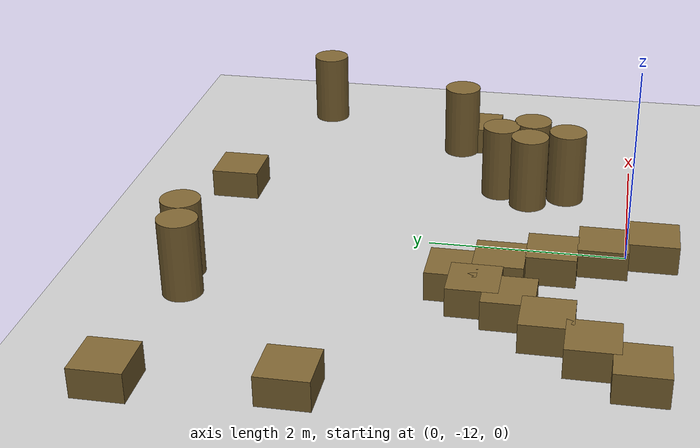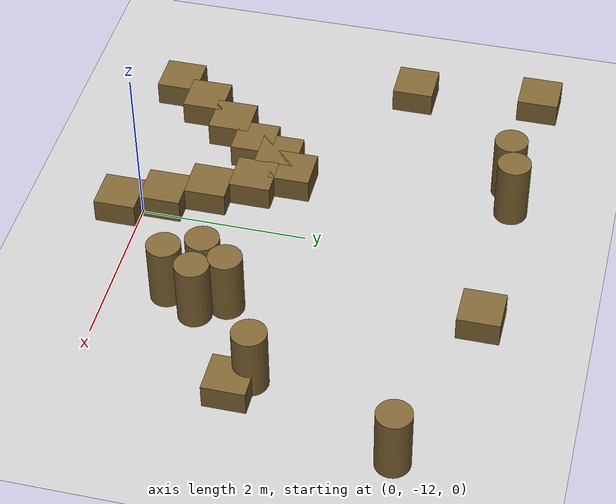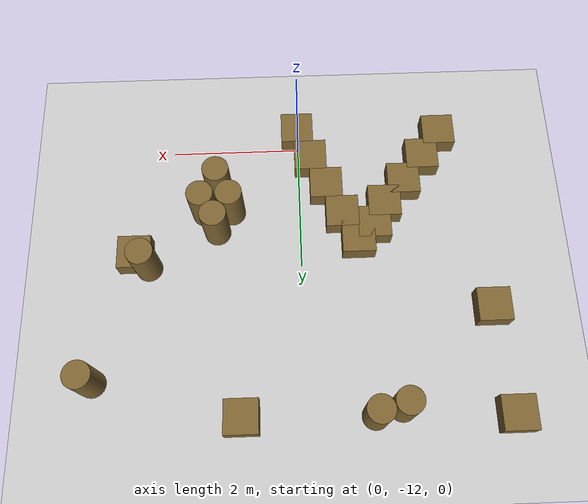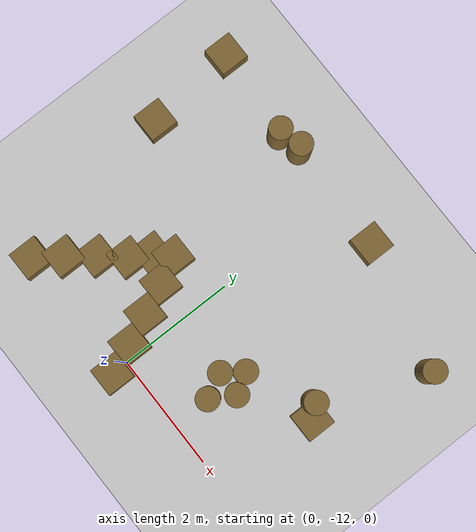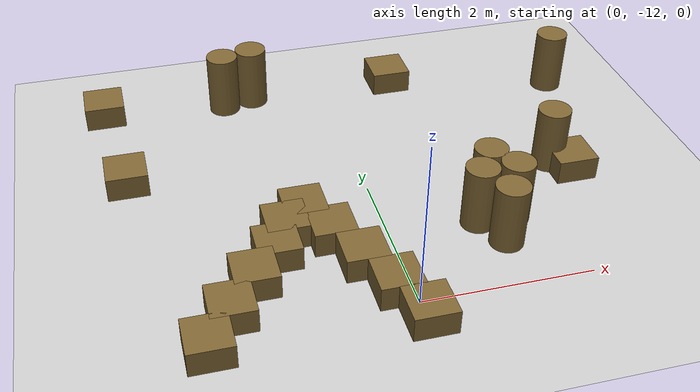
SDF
<sdf version="1.7">
 <world name="default">
  <model name="ground_plane">
   <static>1</static>
   <link name="link">
    <collision name="collision">
     <geometry><plane><normal>0 0 1</normal><size>100 100</size></plane></geometry>
     <surface><friction><ode><mu>100</mu><mu2>50</mu2></ode></friction></surface>
    </collision>
    <visual name="visual">
     <cast_shadows>0</cast_shadows>
     <geometry><plane><normal>0 0 1</normal><size>100 100</size></plane></geometry>
     <material>
      <script><uri>file://media/materials/scripts/gazebo.material</uri><name>Gazebo/Grey</name></script>
     </material>
    </visual>
   </link>
  </model>
  <model name="mini_box_clone_clone_3_clone_0_clone_0_clone">
   <link name="link">
    <inertial>
     <mass>1</mass>
     <inertia>
      <ixx>0.166667</ixx>
      <ixy>0</ixy>
      <ixz>0</ixz>
      <iyy>0.166667</iyy>
      <iyz>0</iyz>
      <izz>0.166667</izz>
     </inertia>
    </inertial>
    <visual name="visual">
     <geometry><box><size>0.5 0.5 0.3</size></box></geometry>
     <material>
      <script><name>Gazebo/Grey</name><uri>file://media/materials/scripts/gazebo.material</uri></script>
      <shader type="vertex"><normal_map>__default__</normal_map></shader>
      <ambient>0.5 0.4 0.2 1</ambient>
      <diffuse>0.7 0.7 0.7 1</diffuse>
      <specular>0.01 0.01 0.01 1</specular>
      <emissive>0 0 0 1</emissive>
     </material>
    </visual>
    <collision name="collision">
     <geometry><box><size>0.5 0.5 0.3</size></box></geometry>
     <surface>
      <friction>
       <ode><mu>1</mu><mu2>1</mu2><fdir1>0 0 0</fdir1><slip1>0</slip1><slip2>0</slip2></ode>
       <torsional>
        <coefficient>1</coefficient>
        <patch_radius>0</patch_radius>
        <surface_radius>0</surface_radius>
        <use_patch_radius>1</use_patch_radius>
        <ode><slip>0</slip></ode>
       </torsional>
      </friction>
      <bounce><restitution_coefficient>0</restitution_coefficient><threshold>1e+06</threshold></bounce>
      <contact>
       <collide_without_contact>0</collide_without_contact>
       <collide_without_contact_bitmask>1</collide_without_contact_bitmask>
       <collide_bitmask>1</collide_bitmask>
       <ode>
        <soft_cfm>0</soft_cfm>
        <soft_erp>0.2</soft_erp>
        <kp>1e+13</kp>
        <kd>1</kd>
        <max_vel>0.01</max_vel>
        <min_depth>0</min_depth>
       </ode>
       <bullet>
        <split_impulse>1</split_impulse>
        <split_impulse_penetration_threshold>-0.01</split_impulse_penetration_threshold>
        <soft_cfm>0</soft_cfm>
        <soft_erp>0.2</soft_erp>
        <kp>1e+13</kp>
        <kd>1</kd>
       </bullet>
      </contact>
     </surface>
    </collision>
   </link>
   <static>1</static>
   <pose>0.922017 -7.73696 0.15 0 -0 0</pose>
  </model>
  <model name="mini_box_clone_clone_3_clone_0_clone_0_clone_4">
   <link name="link">
    <inertial>
     <mass>1</mass>
     <inertia>
      <ixx>0.166667</ixx>
      <ixy>0</ixy>
      <ixz>0</ixz>
      <iyy>0.166667</iyy>
      <iyz>0</iyz>
      <izz>0.166667</izz>
     </inertia>
    </inertial>
    <visual name="visual">
     <geometry><box><size>0.5 0.5 0.3</size></box></geometry>
     <material>
      <script><name>Gazebo/Grey</name><uri>file://media/materials/scripts/gazebo.material</uri></script>
      <shader type="vertex"><normal_map>__default__</normal_map></shader>
      <ambient>0.5 0.4 0.2 1</ambient>
      <diffuse>0.7 0.7 0.7 1</diffuse>
      <specular>0.01 0.01 0.01 1</specular>
      <emissive>0 0 0 1</emissive>
     </material>
    </visual>
    <collision name="collision">
     <geometry><box><size>0.5 0.5 0.3</size></box></geometry>
     <surface>
      <friction>
       <ode><mu>1</mu><mu2>1</mu2><fdir1>0 0 0</fdir1><slip1>0</slip1><slip2>0</slip2></ode>
       <torsional>
        <coefficient>1</coefficient>
        <patch_radius>0</patch_radius>
        <surface_radius>0</surface_radius>
        <use_patch_radius>1</use_patch_radius>
        <ode><slip>0</slip></ode>
       </torsional>
      </friction>
      <bounce><restitution_coefficient>0</restitution_coefficient><threshold>1e+06</threshold></bounce>
      <contact>
       <collide_without_contact>0</collide_without_contact>
       <collide_without_contact_bitmask>1</collide_without_contact_bitmask>
       <collide_bitmask>1</collide_bitmask>
       <ode>
        <soft_cfm>0</soft_cfm>
        <soft_erp>0.2</soft_erp>
        <kp>1e+13</kp>
        <kd>1</kd>
        <max_vel>0.01</max_vel>
        <min_depth>0</min_depth>
       </ode>
       <bullet>
        <split_impulse>1</split_impulse>
        <split_impulse_penetration_threshold>-0.01</split_impulse_penetration_threshold>
        <soft_cfm>0</soft_cfm>
        <soft_erp>0.2</soft_erp>
        <kp>1e+13</kp>
        <kd>1</kd>
       </bullet>
      </contact>
     </surface>
    </collision>
   </link>
   <static>1</static>
   <pose>-0.876616 -10.3621 0.15 0 -0 0</pose>
  </model>
  <model name="mini_box_clone_clone_3_clone_0_clone_0_clone_5">
   <link name="link">
    <inertial>
     <mass>1</mass>
     <inertia>
      <ixx>0.166667</ixx>
      <ixy>0</ixy>
      <ixz>0</ixz>
      <iyy>0.166667</iyy>
      <iyz>0</iyz>
      <izz>0.166667</izz>
     </inertia>
    </inertial>
    <visual name="visual">
     <geometry><box><size>0.5 0.5 0.3</size></box></geometry>
     <material>
      <script><name>Gazebo/Grey</name><uri>file://media/materials/scripts/gazebo.material</uri></script>
      <shader type="vertex"><normal_map>__default__</normal_map></shader>
      <ambient>0.5 0.4 0.2 1</ambient>
      <diffuse>0.7 0.7 0.7 1</diffuse>
      <specular>0.01 0.01 0.01 1</specular>
      <emissive>0 0 0 1</emissive>
     </material>
    </visual>
    <collision name="collision">
     <geometry><box><size>0.5 0.5 0.3</size></box></geometry>
     <surface>
      <friction>
       <ode><mu>1</mu><mu2>1</mu2><fdir1>0 0 0</fdir1><slip1>0</slip1><slip2>0</slip2></ode>
       <torsional>
        <coefficient>1</coefficient>
        <patch_radius>0</patch_radius>
        <surface_radius>0</surface_radius>
        <use_patch_radius>1</use_patch_radius>
        <ode><slip>0</slip></ode>
       </torsional>
      </friction>
      <bounce><restitution_coefficient>0</restitution_coefficient><threshold>1e+06</threshold></bounce>
      <contact>
       <collide_without_contact>0</collide_without_contact>
       <collide_without_contact_bitmask>1</collide_without_contact_bitmask>
       <collide_bitmask>1</collide_bitmask>
       <ode>
        <soft_cfm>0</soft_cfm>
        <soft_erp>0.2</soft_erp>
        <kp>1e+13</kp>
        <kd>1</kd>
        <max_vel>0.01</max_vel>
        <min_depth>0</min_depth>
       </ode>
       <bullet>
        <split_impulse>1</split_impulse>
        <split_impulse_penetration_threshold>-0.01</split_impulse_penetration_threshold>
        <soft_cfm>0</soft_cfm>
        <soft_erp>0.2</soft_erp>
        <kp>1e+13</kp>
        <kd>1</kd>
       </bullet>
      </contact>
     </surface>
    </collision>
   </link>
   <static>1</static>
   <pose>-0.64727 -10.7882 0.15 0 -0 0</pose>
  </model>
  <model name="mini_box_clone_clone_3_clone_0_clone_0_clone_6">
   <link name="link">
    <inertial>
     <mass>1</mass>
     <inertia>
      <ixx>0.166667</ixx>
      <ixy>0</ixy>
      <ixz>0</ixz>
      <iyy>0.166667</iyy>
      <iyz>0</iyz>
      <izz>0.166667</izz>
     </inertia>
    </inertial>
    <visual name="visual">
     <geometry><box><size>0.5 0.5 0.3</size></box></geometry>
     <material>
      <script><name>Gazebo/Grey</name><uri>file://media/materials/scripts/gazebo.material</uri></script>
      <shader type="vertex"><normal_map>__default__</normal_map></shader>
      <ambient>0.5 0.4 0.2 1</ambient>
      <diffuse>0.7 0.7 0.7 1</diffuse>
      <specular>0.01 0.01 0.01 1</specular>
      <emissive>0 0 0 1</emissive>
     </material>
    </visual>
    <collision name="collision">
     <geometry><box><size>0.5 0.5 0.3</size></box></geometry>
     <surface>
      <friction>
       <ode><mu>1</mu><mu2>1</mu2><fdir1>0 0 0</fdir1><slip1>0</slip1><slip2>0</slip2></ode>
       <torsional>
        <coefficient>1</coefficient>
        <patch_radius>0</patch_radius>
        <surface_radius>0</surface_radius>
        <use_patch_radius>1</use_patch_radius>
        <ode><slip>0</slip></ode>
       </torsional>
      </friction>
      <bounce><restitution_coefficient>0</restitution_coefficient><threshold>1e+06</threshold></bounce>
      <contact>
       <collide_without_contact>0</collide_without_contact>
       <collide_without_contact_bitmask>1</collide_without_contact_bitmask>
       <collide_bitmask>1</collide_bitmask>
       <ode>
        <soft_cfm>0</soft_cfm>
        <soft_erp>0.2</soft_erp>
        <kp>1e+13</kp>
        <kd>1</kd>
        <max_vel>0.01</max_vel>
        <min_depth>0</min_depth>
       </ode>
       <bullet>
        <split_impulse>1</split_impulse>
        <split_impulse_penetration_threshold>-0.01</split_impulse_penetration_threshold>
        <soft_cfm>0</soft_cfm>
        <soft_erp>0.2</soft_erp>
        <kp>1e+13</kp>
        <kd>1</kd>
       </bullet>
      </contact>
     </surface>
    </collision>
   </link>
   <static>1</static>
   <pose>-0.417818 -11.2795 0.15 0 -0 0</pose>
  </model>
  <model name="mini_box_clone_clone_3_clone_0_clone_0_clone_7">
   <link name="link">
    <inertial>
     <mass>1</mass>
     <inertia>
      <ixx>0.166667</ixx>
      <ixy>0</ixy>
      <ixz>0</ixz>
      <iyy>0.166667</iyy>
      <iyz>0</iyz>
      <izz>0.166667</izz>
     </inertia>
    </inertial>
    <visual name="visual">
     <geometry><box><size>0.5 0.5 0.3</size></box></geometry>
     <material>
      <script><name>Gazebo/Grey</name><uri>file://media/materials/scripts/gazebo.material</uri></script>
      <shader type="vertex"><normal_map>__default__</normal_map></shader>
      <ambient>0.5 0.4 0.2 1</ambient>
      <diffuse>0.7 0.7 0.7 1</diffuse>
      <specular>0.01 0.01 0.01 1</specular>
      <emissive>0 0 0 1</emissive>
     </material>
    </visual>
    <collision name="collision">
     <geometry><box><size>0.5 0.5 0.3</size></box></geometry>
     <surface>
      <friction>
       <ode><mu>1</mu><mu2>1</mu2><fdir1>0 0 0</fdir1><slip1>0</slip1><slip2>0</slip2></ode>
       <torsional>
        <coefficient>1</coefficient>
        <patch_radius>0</patch_radius>
        <surface_radius>0</surface_radius>
        <use_patch_radius>1</use_patch_radius>
        <ode><slip>0</slip></ode>
       </torsional>
      </friction>
      <bounce><restitution_coefficient>0</restitution_coefficient><threshold>1e+06</threshold></bounce>
      <contact>
       <collide_without_contact>0</collide_without_contact>
       <collide_without_contact_bitmask>1</collide_without_contact_bitmask>
       <collide_bitmask>1</collide_bitmask>
       <ode>
        <soft_cfm>0</soft_cfm>
        <soft_erp>0.2</soft_erp>
        <kp>1e+13</kp>
        <kd>1</kd>
        <max_vel>0.01</max_vel>
        <min_depth>0</min_depth>
       </ode>
       <bullet>
        <split_impulse>1</split_impulse>
        <split_impulse_penetration_threshold>-0.01</split_impulse_penetration_threshold>
        <soft_cfm>0</soft_cfm>
        <soft_erp>0.2</soft_erp>
        <kp>1e+13</kp>
        <kd>1</kd>
       </bullet>
      </contact>
     </surface>
    </collision>
   </link>
   <static>1</static>
   <pose>-0.188472 -11.771 0.15 0 -0 0</pose>
  </model>
  <model name="mini_box_clone_clone_3_clone_0_clone_0_clone_8">
   <link name="link">
    <inertial>
     <mass>1</mass>
     <inertia>
      <ixx>0.166667</ixx>
      <ixy>0</ixy>
      <ixz>0</ixz>
      <iyy>0.166667</iyy>
      <iyz>0</iyz>
      <izz>0.166667</izz>
     </inertia>
    </inertial>
    <visual name="visual">
     <geometry><box><size>0.5 0.5 0.3</size></box></geometry>
     <material>
      <script><name>Gazebo/Grey</name><uri>file://media/materials/scripts/gazebo.material</uri></script>
      <shader type="vertex"><normal_map>__default__</normal_map></shader>
      <ambient>0.5 0.4 0.2 1</ambient>
      <diffuse>0.7 0.7 0.7 1</diffuse>
      <specular>0.01 0.01 0.01 1</specular>
      <emissive>0 0 0 1</emissive>
     </material>
    </visual>
    <collision name="collision">
     <geometry><box><size>0.5 0.5 0.3</size></box></geometry>
     <surface>
      <friction>
       <ode><mu>1</mu><mu2>1</mu2><fdir1>0 0 0</fdir1><slip1>0</slip1><slip2>0</slip2></ode>
       <torsional>
        <coefficient>1</coefficient>
        <patch_radius>0</patch_radius>
        <surface_radius>0</surface_radius>
        <use_patch_radius>1</use_patch_radius>
        <ode><slip>0</slip></ode>
       </torsional>
      </friction>
      <bounce><restitution_coefficient>0</restitution_coefficient><threshold>1e+06</threshold></bounce>
      <contact>
       <collide_without_contact>0</collide_without_contact>
       <collide_without_contact_bitmask>1</collide_without_contact_bitmask>
       <collide_bitmask>1</collide_bitmask>
       <ode>
        <soft_cfm>0</soft_cfm>
        <soft_erp>0.2</soft_erp>
        <kp>1e+13</kp>
        <kd>1</kd>
        <max_vel>0.01</max_vel>
        <min_depth>0</min_depth>
       </ode>
       <bullet>
        <split_impulse>1</split_impulse>
        <split_impulse_penetration_threshold>-0.01</split_impulse_penetration_threshold>
        <soft_cfm>0</soft_cfm>
        <soft_erp>0.2</soft_erp>
        <kp>1e+13</kp>
        <kd>1</kd>
       </bullet>
      </contact>
     </surface>
    </collision>
   </link>
   <static>1</static>
   <pose>0.00799 -12.2624 0.15 0 -0 0</pose>
  </model>
  <model name="mini_cylinder_0_clone_0_clone_0_clone">
   <link name="link">
    <inertial>
     <mass>1</mass>
     <inertia><ixx>0.145833</ixx><ixy>0</ixy><ixz>0</ixz><iyy>0.145833</iyy><iyz>0</iyz><izz>0.125</izz></inertia>
    </inertial>
    <visual name="visual">
     <geometry><cylinder><radius>0.2</radius><length>0.8</length></cylinder></geometry>
     <material>
      <script><name>Gazebo/Grey</name><uri>file://media/materials/scripts/gazebo.material</uri></script>
      <shader type="vertex"><normal_map>__default__</normal_map></shader>
      <ambient>0.5 0.4 0.2 1</ambient>
      <diffuse>0.7 0.7 0.7 1</diffuse>
      <specular>0.01 0.01 0.01 1</specular>
      <emissive>0 0 0 1</emissive>
     </material>
    </visual>
    <collision name="collision">
     <geometry><cylinder><radius>0.2</radius><length>0.8</length></cylinder></geometry>
     <surface>
      <friction>
       <ode><mu>1</mu><mu2>1</mu2><fdir1>0 0 0</fdir1><slip1>0</slip1><slip2>0</slip2></ode>
       <torsional>
        <coefficient>1</coefficient>
        <patch_radius>0</patch_radius>
        <surface_radius>0</surface_radius>
        <use_patch_radius>1</use_patch_radius>
        <ode><slip>0</slip></ode>
       </torsional>
      </friction>
      <bounce><restitution_coefficient>0</restitution_coefficient><threshold>1e+06</threshold></bounce>
      <contact>
       <collide_without_contact>0</collide_without_contact>
       <collide_without_contact_bitmask>1</collide_without_contact_bitmask>
       <collide_bitmask>1</collide_bitmask>
       <ode>
        <soft_cfm>0</soft_cfm>
        <soft_erp>0.2</soft_erp>
        <kp>1e+13</kp>
        <kd>1</kd>
        <max_vel>0.01</max_vel>
        <min_depth>0</min_depth>
       </ode>
       <bullet>
        <split_impulse>1</split_impulse>
        <split_impulse_penetration_threshold>-0.01</split_impulse_penetration_threshold>
        <soft_cfm>0</soft_cfm>
        <soft_erp>0.2</soft_erp>
        <kp>1e+13</kp>
        <kd>1</kd>
       </bullet>
      </contact>
     </surface>
    </collision>
   </link>
   <static>1</static>
   <pose>1.28573 -10.5914 0.4 0 -0 0</pose>
  </model>
  <model name="mini_cylinder_0_clone_0_clone_0_clone_0">
   <link name="link">
    <inertial>
     <mass>1</mass>
     <inertia><ixx>0.145833</ixx><ixy>0</ixy><ixz>0</ixz><iyy>0.145833</iyy><iyz>0</iyz><izz>0.125</izz></inertia>
    </inertial>
    <visual name="visual">
     <geometry><cylinder><radius>0.2</radius><length>0.8</length></cylinder></geometry>
     <material>
      <script><name>Gazebo/Grey</name><uri>file://media/materials/scripts/gazebo.material</uri></script>
      <shader type="vertex"><normal_map>__default__</normal_map></shader>
      <ambient>0.5 0.4 0.2 1</ambient>
      <diffuse>0.7 0.7 0.7 1</diffuse>
      <specular>0.01 0.01 0.01 1</specular>
      <emissive>0 0 0 1</emissive>
     </material>
    </visual>
    <collision name="collision">
     <geometry><cylinder><radius>0.2</radius><length>0.8</length></cylinder></geometry>
     <surface>
      <friction>
       <ode><mu>1</mu><mu2>1</mu2><fdir1>0 0 0</fdir1><slip1>0</slip1><slip2>0</slip2></ode>
       <torsional>
        <coefficient>1</coefficient>
        <patch_radius>0</patch_radius>
        <surface_radius>0</surface_radius>
        <use_patch_radius>1</use_patch_radius>
        <ode><slip>0</slip></ode>
       </torsional>
      </friction>
      <bounce><restitution_coefficient>0</restitution_coefficient><threshold>1e+06</threshold></bounce>
      <contact>
       <collide_without_contact>0</collide_without_contact>
       <collide_without_contact_bitmask>1</collide_without_contact_bitmask>
       <collide_bitmask>1</collide_bitmask>
       <ode>
        <soft_cfm>0</soft_cfm>
        <soft_erp>0.2</soft_erp>
        <kp>1e+13</kp>
        <kd>1</kd>
        <max_vel>0.01</max_vel>
        <min_depth>0</min_depth>
       </ode>
       <bullet>
        <split_impulse>1</split_impulse>
        <split_impulse_penetration_threshold>-0.01</split_impulse_penetration_threshold>
        <soft_cfm>0</soft_cfm>
        <soft_erp>0.2</soft_erp>
        <kp>1e+13</kp>
        <kd>1</kd>
       </bullet>
      </contact>
     </surface>
    </collision>
   </link>
   <static>1</static>
   <pose>1.4823 -10.9191 0.4 0 -0 0</pose>
  </model>
  <model name="mini_cylinder_0_clone_0_clone_0_clone_1">
   <link name="link">
    <inertial>
     <mass>1</mass>
     <inertia><ixx>0.145833</ixx><ixy>0</ixy><ixz>0</ixz><iyy>0.145833</iyy><iyz>0</iyz><izz>0.125</izz></inertia>
    </inertial>
    <visual name="visual">
     <geometry><cylinder><radius>0.2</radius><length>0.8</length></cylinder></geometry>
     <material>
      <script><name>Gazebo/Grey</name><uri>file://media/materials/scripts/gazebo.material</uri></script>
      <shader type="vertex"><normal_map>__default__</normal_map></shader>
      <ambient>0.5 0.4 0.2 1</ambient>
      <diffuse>0.7 0.7 0.7 1</diffuse>
      <specular>0.01 0.01 0.01 1</specular>
      <emissive>0 0 0 1</emissive>
     </material>
    </visual>
    <collision name="collision">
     <geometry><cylinder><radius>0.2</radius><length>0.8</length></cylinder></geometry>
     <surface>
      <friction>
       <ode><mu>1</mu><mu2>1</mu2><fdir1>0 0 0</fdir1><slip1>0</slip1><slip2>0</slip2></ode>
       <torsional>
        <coefficient>1</coefficient>
        <patch_radius>0</patch_radius>
        <surface_radius>0</surface_radius>
        <use_patch_radius>1</use_patch_radius>
        <ode><slip>0</slip></ode>
       </torsional>
      </friction>
      <bounce><restitution_coefficient>0</restitution_coefficient><threshold>1e+06</threshold></bounce>
      <contact>
       <collide_without_contact>0</collide_without_contact>
       <collide_without_contact_bitmask>1</collide_without_contact_bitmask>
       <collide_bitmask>1</collide_bitmask>
       <ode>
        <soft_cfm>0</soft_cfm>
        <soft_erp>0.2</soft_erp>
        <kp>1e+13</kp>
        <kd>1</kd>
        <max_vel>0.01</max_vel>
        <min_depth>0</min_depth>
       </ode>
       <bullet>
        <split_impulse>1</split_impulse>
        <split_impulse_penetration_threshold>-0.01</split_impulse_penetration_threshold>
        <soft_cfm>0</soft_cfm>
        <soft_erp>0.2</soft_erp>
        <kp>1e+13</kp>
        <kd>1</kd>
       </bullet>
      </contact>
     </surface>
    </collision>
   </link>
   <static>1</static>
   <pose>1.05628 -10.9191 0.4 0 -0 0</pose>
  </model>
  <model name="mini_cylinder_0_clone_0_clone_0_clone_2">
   <link name="link">
    <inertial>
     <mass>1</mass>
     <inertia><ixx>0.145833</ixx><ixy>0</ixy><ixz>0</ixz><iyy>0.145833</iyy><iyz>0</iyz><izz>0.125</izz></inertia>
    </inertial>
    <visual name="visual">
     <geometry><cylinder><radius>0.2</radius><length>0.8</length></cylinder></geometry>
     <material>
      <script><name>Gazebo/Grey</name><uri>file://media/materials/scripts/gazebo.material</uri></script>
      <shader type="vertex"><normal_map>__default__</normal_map></shader>
      <ambient>0.5 0.4 0.2 1</ambient>
      <diffuse>0.7 0.7 0.7 1</diffuse>
      <specular>0.01 0.01 0.01 1</specular>
      <emissive>0 0 0 1</emissive>
     </material>
    </visual>
    <collision name="collision">
     <geometry><cylinder><radius>0.2</radius><length>0.8</length></cylinder></geometry>
     <surface>
      <friction>
       <ode><mu>1</mu><mu2>1</mu2><fdir1>0 0 0</fdir1><slip1>0</slip1><slip2>0</slip2></ode>
       <torsional>
        <coefficient>1</coefficient>
        <patch_radius>0</patch_radius>
        <surface_radius>0</surface_radius>
        <use_patch_radius>1</use_patch_radius>
        <ode><slip>0</slip></ode>
       </torsional>
      </friction>
      <bounce><restitution_coefficient>0</restitution_coefficient><threshold>1e+06</threshold></bounce>
      <contact>
       <collide_without_contact>0</collide_without_contact>
       <collide_without_contact_bitmask>1</collide_without_contact_bitmask>
       <collide_bitmask>1</collide_bitmask>
       <ode>
        <soft_cfm>0</soft_cfm>
        <soft_erp>0.2</soft_erp>
        <kp>1e+13</kp>
        <kd>1</kd>
        <max_vel>0.01</max_vel>
        <min_depth>0</min_depth>
       </ode>
       <bullet>
        <split_impulse>1</split_impulse>
        <split_impulse_penetration_threshold>-0.01</split_impulse_penetration_threshold>
        <soft_cfm>0</soft_cfm>
        <soft_erp>0.2</soft_erp>
        <kp>1e+13</kp>
        <kd>1</kd>
       </bullet>
      </contact>
     </surface>
    </collision>
   </link>
   <static>1</static>
   <pose>1.25295 -11.3121 0.4 0 -0 0</pose>
  </model>
  <model name="mini_cylinder_0_clone_0_clone_0_clone_3">
   <link name="link">
    <inertial>
     <mass>1</mass>
     <inertia><ixx>0.145833</ixx><ixy>0</ixy><ixz>0</ixz><iyy>0.145833</iyy><iyz>0</iyz><izz>0.125</izz></inertia>
    </inertial>
    <visual name="visual">
     <geometry><cylinder><radius>0.2</radius><length>0.8</length></cylinder></geometry>
     <material>
      <script><name>Gazebo/Grey</name><uri>file://media/materials/scripts/gazebo.material</uri></script>
      <shader type="vertex"><normal_map>__default__</normal_map></shader>
      <ambient>0.5 0.4 0.2 1</ambient>
      <diffuse>0.7 0.7 0.7 1</diffuse>
      <specular>0.01 0.01 0.01 1</specular>
      <emissive>0 0 0 1</emissive>
     </material>
    </visual>
    <collision name="collision">
     <geometry><cylinder><radius>0.2</radius><length>0.8</length></cylinder></geometry>
     <surface>
      <friction>
       <ode><mu>1</mu><mu2>1</mu2><fdir1>0 0 0</fdir1><slip1>0</slip1><slip2>0</slip2></ode>
       <torsional>
        <coefficient>1</coefficient>
        <patch_radius>0</patch_radius>
        <surface_radius>0</surface_radius>
        <use_patch_radius>1</use_patch_radius>
        <ode><slip>0</slip></ode>
       </torsional>
      </friction>
      <bounce><restitution_coefficient>0</restitution_coefficient><threshold>1e+06</threshold></bounce>
      <contact>
       <collide_without_contact>0</collide_without_contact>
       <collide_without_contact_bitmask>1</collide_without_contact_bitmask>
       <collide_bitmask>1</collide_bitmask>
       <ode>
        <soft_cfm>0</soft_cfm>
        <soft_erp>0.2</soft_erp>
        <kp>1e+13</kp>
        <kd>1</kd>
        <max_vel>0.01</max_vel>
        <min_depth>0</min_depth>
       </ode>
       <bullet>
        <split_impulse>1</split_impulse>
        <split_impulse_penetration_threshold>-0.01</split_impulse_penetration_threshold>
        <soft_cfm>0</soft_cfm>
        <soft_erp>0.2</soft_erp>
        <kp>1e+13</kp>
        <kd>1</kd>
       </bullet>
      </contact>
     </surface>
    </collision>
   </link>
   <static>1</static>
   <pose>-0.974742 -7.7083 0.4 0 -0 0</pose>
  </model>
  <model name="mini_cylinder_0_clone_0_clone_0_clone_5">
   <link name="link">
    <inertial>
     <mass>1</mass>
     <inertia><ixx>0.145833</ixx><ixy>0</ixy><ixz>0</ixz><iyy>0.145833</iyy><iyz>0</iyz><izz>0.125</izz></inertia>
    </inertial>
    <visual name="visual">
     <geometry><cylinder><radius>0.2</radius><length>0.8</length></cylinder></geometry>
     <material>
      <script><name>Gazebo/Grey</name><uri>file://media/materials/scripts/gazebo.material</uri></script>
      <shader type="vertex"><normal_map>__default__</normal_map></shader>
      <ambient>0.5 0.4 0.2 1</ambient>
      <diffuse>0.7 0.7 0.7 1</diffuse>
      <specular>0.01 0.01 0.01 1</specular>
      <emissive>0 0 0 1</emissive>
     </material>
    </visual>
    <collision name="collision">
     <geometry><cylinder><radius>0.2</radius><length>0.8</length></cylinder></geometry>
     <surface>
      <friction>
       <ode><mu>1</mu><mu2>1</mu2><fdir1>0 0 0</fdir1><slip1>0</slip1><slip2>0</slip2></ode>
       <torsional>
        <coefficient>1</coefficient>
        <patch_radius>0</patch_radius>
        <surface_radius>0</surface_radius>
        <use_patch_radius>1</use_patch_radius>
        <ode><slip>0</slip></ode>
       </torsional>
      </friction>
      <bounce><restitution_coefficient>0</restitution_coefficient><threshold>1e+06</threshold></bounce>
      <contact>
       <collide_without_contact>0</collide_without_contact>
       <collide_without_contact_bitmask>1</collide_without_contact_bitmask>
       <collide_bitmask>1</collide_bitmask>
       <ode>
        <soft_cfm>0</soft_cfm>
        <soft_erp>0.2</soft_erp>
        <kp>1e+13</kp>
        <kd>1</kd>
        <max_vel>0.01</max_vel>
        <min_depth>0</min_depth>
       </ode>
       <bullet>
        <split_impulse>1</split_impulse>
        <split_impulse_penetration_threshold>-0.01</split_impulse_penetration_threshold>
        <soft_cfm>0</soft_cfm>
        <soft_erp>0.2</soft_erp>
        <kp>1e+13</kp>
        <kd>1</kd>
       </bullet>
      </contact>
     </surface>
    </collision>
   </link>
   <static>1</static>
   <pose>-1.36798 -7.80664 0.4 0 -0 0</pose>
  </model>
  <model name="mini_cylinder_0_clone_0_clone_0_clone_9">
   <link name="link">
    <inertial>
     <mass>1</mass>
     <inertia><ixx>0.145833</ixx><ixy>0</ixy><ixz>0</ixz><iyy>0.145833</iyy><iyz>0</iyz><izz>0.125</izz></inertia>
    </inertial>
    <visual name="visual">
     <geometry><cylinder><radius>0.2</radius><length>0.8</length></cylinder></geometry>
     <material>
      <script><name>Gazebo/Grey</name><uri>file://media/materials/scripts/gazebo.material</uri></script>
      <shader type="vertex"><normal_map>__default__</normal_map></shader>
      <ambient>0.5 0.4 0.2 1</ambient>
      <diffuse>0.7 0.7 0.7 1</diffuse>
      <specular>0.01 0.01 0.01 1</specular>
      <emissive>0 0 0 1</emissive>
     </material>
    </visual>
    <collision name="collision">
     <geometry><cylinder><radius>0.2</radius><length>0.8</length></cylinder></geometry>
     <surface>
      <friction>
       <ode><mu>1</mu><mu2>1</mu2><fdir1>0 0 0</fdir1><slip1>0</slip1><slip2>0</slip2></ode>
       <torsional>
        <coefficient>1</coefficient>
        <patch_radius>0</patch_radius>
        <surface_radius>0</surface_radius>
        <use_patch_radius>1</use_patch_radius>
        <ode><slip>0</slip></ode>
       </torsional>
      </friction>
      <bounce><restitution_coefficient>0</restitution_coefficient><threshold>1e+06</threshold></bounce>
      <contact>
       <collide_without_contact>0</collide_without_contact>
       <collide_without_contact_bitmask>1</collide_without_contact_bitmask>
       <collide_bitmask>1</collide_bitmask>
       <ode>
        <soft_cfm>0</soft_cfm>
        <soft_erp>0.2</soft_erp>
        <kp>1e+13</kp>
        <kd>1</kd>
        <max_vel>0.01</max_vel>
        <min_depth>0</min_depth>
       </ode>
       <bullet>
        <split_impulse>1</split_impulse>
        <split_impulse_penetration_threshold>-0.01</split_impulse_penetration_threshold>
        <soft_cfm>0</soft_cfm>
        <soft_erp>0.2</soft_erp>
        <kp>1e+13</kp>
        <kd>1</kd>
       </bullet>
      </contact>
     </surface>
    </collision>
   </link>
   <static>1</static>
   <pose>2.32667 -10.0345 0.4 0 -0 0</pose>
  </model>
  <model name="mini_cylinder_0_clone_0_clone_0_clone_10">
   <link name="link">
    <inertial>
     <mass>1</mass>
     <inertia><ixx>0.145833</ixx><ixy>0</ixy><ixz>0</ixz><iyy>0.145833</iyy><iyz>0</iyz><izz>0.125</izz></inertia>
    </inertial>
    <visual name="visual">
     <geometry><cylinder><radius>0.2</radius><length>0.8</length></cylinder></geometry>
     <material>
      <script><name>Gazebo/Grey</name><uri>file://media/materials/scripts/gazebo.material</uri></script>
      <shader type="vertex"><normal_map>__default__</normal_map></shader>
      <ambient>0.5 0.4 0.2 1</ambient>
      <diffuse>0.7 0.7 0.7 1</diffuse>
      <specular>0.01 0.01 0.01 1</specular>
      <emissive>0 0 0 1</emissive>
     </material>
    </visual>
    <collision name="collision">
     <geometry><cylinder><radius>0.2</radius><length>0.8</length></cylinder></geometry>
     <surface>
      <friction>
       <ode><mu>1</mu><mu2>1</mu2><fdir1>0 0 0</fdir1><slip1>0</slip1><slip2>0</slip2></ode>
       <torsional>
        <coefficient>1</coefficient>
        <patch_radius>0</patch_radius>
        <surface_radius>0</surface_radius>
        <use_patch_radius>1</use_patch_radius>
        <ode><slip>0</slip></ode>
       </torsional>
      </friction>
      <bounce><restitution_coefficient>0</restitution_coefficient><threshold>1e+06</threshold></bounce>
      <contact>
       <collide_without_contact>0</collide_without_contact>
       <collide_without_contact_bitmask>1</collide_without_contact_bitmask>
       <collide_bitmask>1</collide_bitmask>
       <ode>
        <soft_cfm>0</soft_cfm>
        <soft_erp>0.2</soft_erp>
        <kp>1e+13</kp>
        <kd>1</kd>
        <max_vel>0.01</max_vel>
        <min_depth>0</min_depth>
       </ode>
       <bullet>
        <split_impulse>1</split_impulse>
        <split_impulse_penetration_threshold>-0.01</split_impulse_penetration_threshold>
        <soft_cfm>0</soft_cfm>
        <soft_erp>0.2</soft_erp>
        <kp>1e+13</kp>
        <kd>1</kd>
       </bullet>
      </contact>
     </surface>
    </collision>
   </link>
   <static>1</static>
   <pose>3.08026 -8.2979 0.4 0 -0 0</pose>
  </model>
  <model name="mini_box_clone_clone_0_clone_28">
   <link name="link">
    <inertial>
     <mass>1</mass>
     <inertia>
      <ixx>0.166667</ixx>
      <ixy>0</ixy>
      <ixz>0</ixz>
      <iyy>0.166667</iyy>
      <iyz>0</iyz>
      <izz>0.166667</izz>
     </inertia>
    </inertial>
    <visual name="visual">
     <geometry><box><size>0.5 0.5 0.3</size></box></geometry>
     <material>
      <script><name>Gazebo/Grey</name><uri>file://media/materials/scripts/gazebo.material</uri></script>
      <shader type="vertex"><normal_map>__default__</normal_map></shader>
      <ambient>0.5 0.4 0.2 1</ambient>
      <diffuse>0.7 0.7 0.7 1</diffuse>
      <specular>0.01 0.01 0.01 1</specular>
      <emissive>0 0 0 1</emissive>
     </material>
    </visual>
    <collision name="collision">
     <geometry><box><size>0.5 0.5 0.3</size></box></geometry>
     <surface>
      <friction>
       <ode><mu>1</mu><mu2>1</mu2><fdir1>0 0 0</fdir1><slip1>0</slip1><slip2>0</slip2></ode>
       <torsional>
        <coefficient>1</coefficient>
        <patch_radius>0</patch_radius>
        <surface_radius>0</surface_radius>
        <use_patch_radius>1</use_patch_radius>
        <ode><slip>0</slip></ode>
       </torsional>
      </friction>
      <bounce><restitution_coefficient>0</restitution_coefficient><threshold>1e+06</threshold></bounce>
      <contact>
       <collide_without_contact>0</collide_without_contact>
       <collide_without_contact_bitmask>1</collide_without_contact_bitmask>
       <collide_bitmask>1</collide_bitmask>
       <ode>
        <soft_cfm>0</soft_cfm>
        <soft_erp>0.2</soft_erp>
        <kp>1e+13</kp>
        <kd>1</kd>
        <max_vel>0.01</max_vel>
        <min_depth>0</min_depth>
       </ode>
       <bullet>
        <split_impulse>1</split_impulse>
        <split_impulse_penetration_threshold>-0.01</split_impulse_penetration_threshold>
        <soft_cfm>0</soft_cfm>
        <soft_erp>0.2</soft_erp>
        <kp>1e+13</kp>
        <kd>1</kd>
       </bullet>
      </contact>
     </surface>
    </collision>
   </link>
   <static>1</static>
   <pose>-2.94792 -7.66128 0.15 0 -0 0</pose>
  </model>
  <model name="mini_box_clone_clone_0_clone_31">
   <link name="link">
    <inertial>
     <mass>1</mass>
     <inertia>
      <ixx>0.166667</ixx>
      <ixy>0</ixy>
      <ixz>0</ixz>
      <iyy>0.166667</iyy>
      <iyz>0</iyz>
      <izz>0.166667</izz>
     </inertia>
    </inertial>
    <visual name="visual">
     <geometry><box><size>0.5 0.5 0.3</size></box></geometry>
     <material>
      <script><name>Gazebo/Grey</name><uri>file://media/materials/scripts/gazebo.material</uri></script>
      <shader type="vertex"><normal_map>__default__</normal_map></shader>
      <ambient>0.5 0.4 0.2 1</ambient>
      <diffuse>0.7 0.7 0.7 1</diffuse>
      <specular>0.01 0.01 0.01 1</specular>
      <emissive>0 0 0 1</emissive>
     </material>
    </visual>
    <collision name="collision">
     <geometry><box><size>0.5 0.5 0.3</size></box></geometry>
     <surface>
      <friction>
       <ode><mu>1</mu><mu2>1</mu2><fdir1>0 0 0</fdir1><slip1>0</slip1><slip2>0</slip2></ode>
       <torsional>
        <coefficient>1</coefficient>
        <patch_radius>0</patch_radius>
        <surface_radius>0</surface_radius>
        <use_patch_radius>1</use_patch_radius>
        <ode><slip>0</slip></ode>
       </torsional>
      </friction>
      <bounce><restitution_coefficient>0</restitution_coefficient><threshold>1e+06</threshold></bounce>
      <contact>
       <collide_without_contact>0</collide_without_contact>
       <collide_without_contact_bitmask>1</collide_without_contact_bitmask>
       <collide_bitmask>1</collide_bitmask>
       <ode>
        <soft_cfm>0</soft_cfm>
        <soft_erp>0.2</soft_erp>
        <kp>1e+13</kp>
        <kd>1</kd>
        <max_vel>0.01</max_vel>
        <min_depth>0</min_depth>
       </ode>
       <bullet>
        <split_impulse>1</split_impulse>
        <split_impulse_penetration_threshold>-0.01</split_impulse_penetration_threshold>
        <soft_cfm>0</soft_cfm>
        <soft_erp>0.2</soft_erp>
        <kp>1e+13</kp>
        <kd>1</kd>
       </bullet>
      </contact>
     </surface>
    </collision>
   </link>
   <static>1</static>
   <pose>2.52301 -10.2226 0.15 0 -0 0</pose>
  </model>
  <model name="mini_box_clone_clone_0_clone_37">
   <link name="link">
    <inertial>
     <mass>1</mass>
     <inertia>
      <ixx>0.166667</ixx>
      <ixy>0</ixy>
      <ixz>0</ixz>
      <iyy>0.166667</iyy>
      <iyz>0</iyz>
      <izz>0.166667</izz>
     </inertia>
    </inertial>
    <visual name="visual">
     <geometry><box><size>0.5 0.5 0.3</size></box></geometry>
     <material>
      <script><name>Gazebo/Grey</name><uri>file://media/materials/scripts/gazebo.material</uri></script>
      <shader type="vertex"><normal_map>__default__</normal_map></shader>
      <ambient>0.5 0.4 0.2 1</ambient>
      <diffuse>0.7 0.7 0.7 1</diffuse>
      <specular>0.01 0.01 0.01 1</specular>
      <emissive>0 0 0 1</emissive>
     </material>
    </visual>
    <collision name="collision">
     <geometry><box><size>0.5 0.5 0.3</size></box></geometry>
     <surface>
      <friction>
       <ode><mu>1</mu><mu2>1</mu2><fdir1>0 0 0</fdir1><slip1>0</slip1><slip2>0</slip2></ode>
       <torsional>
        <coefficient>1</coefficient>
        <patch_radius>0</patch_radius>
        <surface_radius>0</surface_radius>
        <use_patch_radius>1</use_patch_radius>
        <ode><slip>0</slip></ode>
       </torsional>
      </friction>
      <bounce><restitution_coefficient>0</restitution_coefficient><threshold>1e+06</threshold></bounce>
      <contact>
       <collide_without_contact>0</collide_without_contact>
       <collide_without_contact_bitmask>1</collide_without_contact_bitmask>
       <collide_bitmask>1</collide_bitmask>
       <ode>
        <soft_cfm>0</soft_cfm>
        <soft_erp>0.2</soft_erp>
        <kp>1e+13</kp>
        <kd>1</kd>
        <max_vel>0.01</max_vel>
        <min_depth>0</min_depth>
       </ode>
       <bullet>
        <split_impulse>1</split_impulse>
        <split_impulse_penetration_threshold>-0.01</split_impulse_penetration_threshold>
        <soft_cfm>0</soft_cfm>
        <soft_erp>0.2</soft_erp>
        <kp>1e+13</kp>
        <kd>1</kd>
       </bullet>
      </contact>
     </surface>
    </collision>
   </link>
   <static>1</static>
   <pose>-1.13251 -10.5957 0.15 0 -0 0</pose>
  </model>
  <model name="mini_box_clone_clone_0_clone_38">
   <link name="link">
    <inertial>
     <mass>1</mass>
     <inertia>
      <ixx>0.166667</ixx>
      <ixy>0</ixy>
      <ixz>0</ixz>
      <iyy>0.166667</iyy>
      <iyz>0</iyz>
      <izz>0.166667</izz>
     </inertia>
    </inertial>
    <visual name="visual">
     <geometry><box><size>0.5 0.5 0.3</size></box></geometry>
     <material>
      <script><name>Gazebo/Grey</name><uri>file://media/materials/scripts/gazebo.material</uri></script>
      <shader type="vertex"><normal_map>__default__</normal_map></shader>
      <ambient>0.5 0.4 0.2 1</ambient>
      <diffuse>0.7 0.7 0.7 1</diffuse>
      <specular>0.01 0.01 0.01 1</specular>
      <emissive>0 0 0 1</emissive>
     </material>
    </visual>
    <collision name="collision">
     <geometry><box><size>0.5 0.5 0.3</size></box></geometry>
     <surface>
      <friction>
       <ode><mu>1</mu><mu2>1</mu2><fdir1>0 0 0</fdir1><slip1>0</slip1><slip2>0</slip2></ode>
       <torsional>
        <coefficient>1</coefficient>
        <patch_radius>0</patch_radius>
        <surface_radius>0</surface_radius>
        <use_patch_radius>1</use_patch_radius>
        <ode><slip>0</slip></ode>
       </torsional>
      </friction>
      <bounce><restitution_coefficient>0</restitution_coefficient><threshold>1e+06</threshold></bounce>
      <contact>
       <collide_without_contact>0</collide_without_contact>
       <collide_without_contact_bitmask>1</collide_without_contact_bitmask>
       <collide_bitmask>1</collide_bitmask>
       <ode>
        <soft_cfm>0</soft_cfm>
        <soft_erp>0.2</soft_erp>
        <kp>1e+13</kp>
        <kd>1</kd>
        <max_vel>0.01</max_vel>
        <min_depth>0</min_depth>
       </ode>
       <bullet>
        <split_impulse>1</split_impulse>
        <split_impulse_penetration_threshold>-0.01</split_impulse_penetration_threshold>
        <soft_cfm>0</soft_cfm>
        <soft_erp>0.2</soft_erp>
        <kp>1e+13</kp>
        <kd>1</kd>
       </bullet>
      </contact>
     </surface>
    </collision>
   </link>
   <static>1</static>
   <pose>-1.30659 -10.9438 0.15 0 -0 0</pose>
  </model>
  <model name="mini_box_clone_clone_0_clone_39">
   <link name="link">
    <inertial>
     <mass>1</mass>
     <inertia>
      <ixx>0.166667</ixx>
      <ixy>0</ixy>
      <ixz>0</ixz>
      <iyy>0.166667</iyy>
      <iyz>0</iyz>
      <izz>0.166667</izz>
     </inertia>
    </inertial>
    <visual name="visual">
     <geometry><box><size>0.5 0.5 0.3</size></box></geometry>
     <material>
      <script><name>Gazebo/Grey</name><uri>file://media/materials/scripts/gazebo.material</uri></script>
      <shader type="vertex"><normal_map>__default__</normal_map></shader>
      <ambient>0.5 0.4 0.2 1</ambient>
      <diffuse>0.7 0.7 0.7 1</diffuse>
      <specular>0.01 0.01 0.01 1</specular>
      <emissive>0 0 0 1</emissive>
     </material>
    </visual>
    <collision name="collision">
     <geometry><box><size>0.5 0.5 0.3</size></box></geometry>
     <surface>
      <friction>
       <ode><mu>1</mu><mu2>1</mu2><fdir1>0 0 0</fdir1><slip1>0</slip1><slip2>0</slip2></ode>
       <torsional>
        <coefficient>1</coefficient>
        <patch_radius>0</patch_radius>
        <surface_radius>0</surface_radius>
        <use_patch_radius>1</use_patch_radius>
        <ode><slip>0</slip></ode>
       </torsional>
      </friction>
      <bounce><restitution_coefficient>0</restitution_coefficient><threshold>1e+06</threshold></bounce>
      <contact>
       <collide_without_contact>0</collide_without_contact>
       <collide_without_contact_bitmask>1</collide_without_contact_bitmask>
       <collide_bitmask>1</collide_bitmask>
       <ode>
        <soft_cfm>0</soft_cfm>
        <soft_erp>0.2</soft_erp>
        <kp>1e+13</kp>
        <kd>1</kd>
        <max_vel>0.01</max_vel>
        <min_depth>0</min_depth>
       </ode>
       <bullet>
        <split_impulse>1</split_impulse>
        <split_impulse_penetration_threshold>-0.01</split_impulse_penetration_threshold>
        <soft_cfm>0</soft_cfm>
        <soft_erp>0.2</soft_erp>
        <kp>1e+13</kp>
        <kd>1</kd>
       </bullet>
      </contact>
     </surface>
    </collision>
   </link>
   <static>1</static>
   <pose>-1.62992 -11.3166 0.15 0 -0 0</pose>
  </model>
  <model name="mini_box_clone_clone_0_clone_40">
   <link name="link">
    <inertial>
     <mass>1</mass>
     <inertia>
      <ixx>0.166667</ixx>
      <ixy>0</ixy>
      <ixz>0</ixz>
      <iyy>0.166667</iyy>
      <iyz>0</iyz>
      <izz>0.166667</izz>
     </inertia>
    </inertial>
    <visual name="visual">
     <geometry><box><size>0.5 0.5 0.3</size></box></geometry>
     <material>
      <script><name>Gazebo/Grey</name><uri>file://media/materials/scripts/gazebo.material</uri></script>
      <shader type="vertex"><normal_map>__default__</normal_map></shader>
      <ambient>0.5 0.4 0.2 1</ambient>
      <diffuse>0.7 0.7 0.7 1</diffuse>
      <specular>0.01 0.01 0.01 1</specular>
      <emissive>0 0 0 1</emissive>
     </material>
    </visual>
    <collision name="collision">
     <geometry><box><size>0.5 0.5 0.3</size></box></geometry>
     <surface>
      <friction>
       <ode><mu>1</mu><mu2>1</mu2><fdir1>0 0 0</fdir1><slip1>0</slip1><slip2>0</slip2></ode>
       <torsional>
        <coefficient>1</coefficient>
        <patch_radius>0</patch_radius>
        <surface_radius>0</surface_radius>
        <use_patch_radius>1</use_patch_radius>
        <ode><slip>0</slip></ode>
       </torsional>
      </friction>
      <bounce><restitution_coefficient>0</restitution_coefficient><threshold>1e+06</threshold></bounce>
      <contact>
       <collide_without_contact>0</collide_without_contact>
       <collide_without_contact_bitmask>1</collide_without_contact_bitmask>
       <collide_bitmask>1</collide_bitmask>
       <ode>
        <soft_cfm>0</soft_cfm>
        <soft_erp>0.2</soft_erp>
        <kp>1e+13</kp>
        <kd>1</kd>
        <max_vel>0.01</max_vel>
        <min_depth>0</min_depth>
       </ode>
       <bullet>
        <split_impulse>1</split_impulse>
        <split_impulse_penetration_threshold>-0.01</split_impulse_penetration_threshold>
        <soft_cfm>0</soft_cfm>
        <soft_erp>0.2</soft_erp>
        <kp>1e+13</kp>
        <kd>1</kd>
       </bullet>
      </contact>
     </surface>
    </collision>
   </link>
   <static>1</static>
   <pose>-1.95316 -11.7397 0.15 0 -0 0</pose>
  </model>
  <model name="mini_box_clone_clone_0_clone_41">
   <link name="link">
    <inertial>
     <mass>1</mass>
     <inertia>
      <ixx>0.166667</ixx>
      <ixy>0</ixy>
      <ixz>0</ixz>
      <iyy>0.166667</iyy>
      <iyz>0</iyz>
      <izz>0.166667</izz>
     </inertia>
    </inertial>
    <visual name="visual">
     <geometry><box><size>0.5 0.5 0.3</size></box></geometry>
     <material>
      <script><name>Gazebo/Grey</name><uri>file://media/materials/scripts/gazebo.material</uri></script>
      <shader type="vertex"><normal_map>__default__</normal_map></shader>
      <ambient>0.5 0.4 0.2 1</ambient>
      <diffuse>0.7 0.7 0.7 1</diffuse>
      <specular>0.01 0.01 0.01 1</specular>
      <emissive>0 0 0 1</emissive>
     </material>
    </visual>
    <collision name="collision">
     <geometry><box><size>0.5 0.5 0.3</size></box></geometry>
     <surface>
      <friction>
       <ode><mu>1</mu><mu2>1</mu2><fdir1>0 0 0</fdir1><slip1>0</slip1><slip2>0</slip2></ode>
       <torsional>
        <coefficient>1</coefficient>
        <patch_radius>0</patch_radius>
        <surface_radius>0</surface_radius>
        <use_patch_radius>1</use_patch_radius>
        <ode><slip>0</slip></ode>
       </torsional>
      </friction>
      <bounce><restitution_coefficient>0</restitution_coefficient><threshold>1e+06</threshold></bounce>
      <contact>
       <collide_without_contact>0</collide_without_contact>
       <collide_without_contact_bitmask>1</collide_without_contact_bitmask>
       <collide_bitmask>1</collide_bitmask>
       <ode>
        <soft_cfm>0</soft_cfm>
        <soft_erp>0.2</soft_erp>
        <kp>1e+13</kp>
        <kd>1</kd>
        <max_vel>0.01</max_vel>
        <min_depth>0</min_depth>
       </ode>
       <bullet>
        <split_impulse>1</split_impulse>
        <split_impulse_penetration_threshold>-0.01</split_impulse_penetration_threshold>
        <soft_cfm>0</soft_cfm>
        <soft_erp>0.2</soft_erp>
        <kp>1e+13</kp>
        <kd>1</kd>
       </bullet>
      </contact>
     </surface>
    </collision>
   </link>
   <static>1</static>
   <pose>-2.2516 -12.1624 0.15 0 -0 0</pose>
  </model>
  <model name="mini_box_clone_clone_0_clone_48">
   <link name="link">
    <inertial>
     <mass>1</mass>
     <inertia>
      <ixx>0.166667</ixx>
      <ixy>0</ixy>
      <ixz>0</ixz>
      <iyy>0.166667</iyy>
      <iyz>0</iyz>
      <izz>0.166667</izz>
     </inertia>
    </inertial>
    <visual name="visual">
     <geometry><box><size>0.5 0.5 0.3</size></box></geometry>
     <material>
      <script><name>Gazebo/Grey</name><uri>file://media/materials/scripts/gazebo.material</uri></script>
      <shader type="vertex"><normal_map>__default__</normal_map></shader>
      <ambient>0.5 0.4 0.2 1</ambient>
      <diffuse>0.7 0.7 0.7 1</diffuse>
      <specular>0.01 0.01 0.01 1</specular>
      <emissive>0 0 0 1</emissive>
     </material>
    </visual>
    <collision name="collision">
     <geometry><box><size>0.5 0.5 0.3</size></box></geometry>
     <surface>
      <friction>
       <ode><mu>1</mu><mu2>1</mu2><fdir1>0 0 0</fdir1><slip1>0</slip1><slip2>0</slip2></ode>
       <torsional>
        <coefficient>1</coefficient>
        <patch_radius>0</patch_radius>
        <surface_radius>0</surface_radius>
        <use_patch_radius>1</use_patch_radius>
        <ode><slip>0</slip></ode>
       </torsional>
      </friction>
      <bounce><restitution_coefficient>0</restitution_coefficient><threshold>1e+06</threshold></bounce>
      <contact>
       <collide_without_contact>0</collide_without_contact>
       <collide_without_contact_bitmask>1</collide_without_contact_bitmask>
       <collide_bitmask>1</collide_bitmask>
       <ode>
        <soft_cfm>0</soft_cfm>
        <soft_erp>0.2</soft_erp>
        <kp>1e+13</kp>
        <kd>1</kd>
        <max_vel>0.01</max_vel>
        <min_depth>0</min_depth>
       </ode>
       <bullet>
        <split_impulse>1</split_impulse>
        <split_impulse_penetration_threshold>-0.01</split_impulse_penetration_threshold>
        <soft_cfm>0</soft_cfm>
        <soft_erp>0.2</soft_erp>
        <kp>1e+13</kp>
        <kd>1</kd>
       </bullet>
      </contact>
     </surface>
    </collision>
   </link>
   <static>1</static>
   <pose>-2.79864 -9.228 0.15 0 -0 0</pose>
  </model>
 </world>
</sdf>
